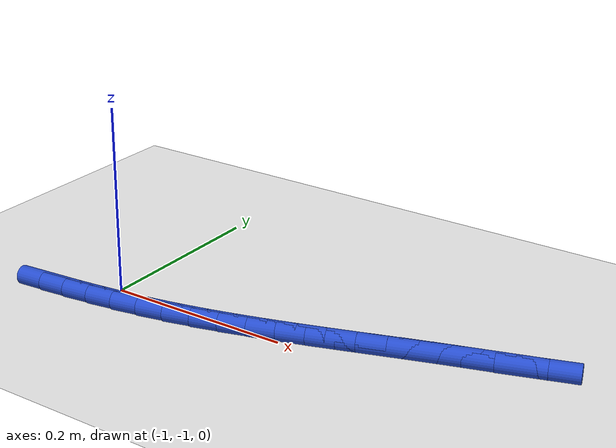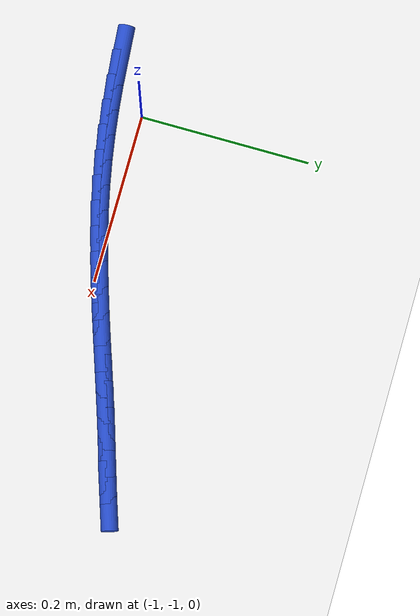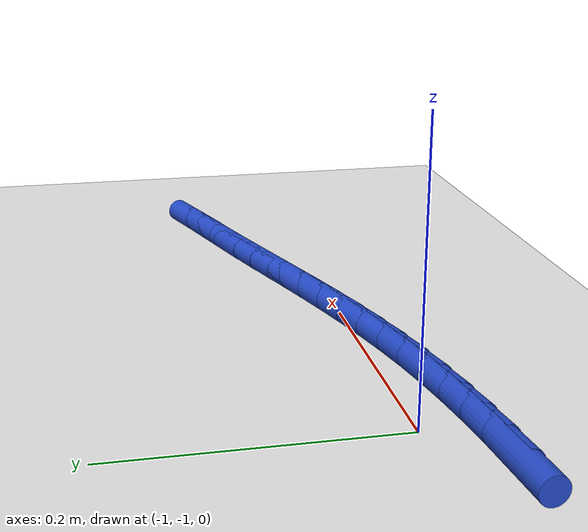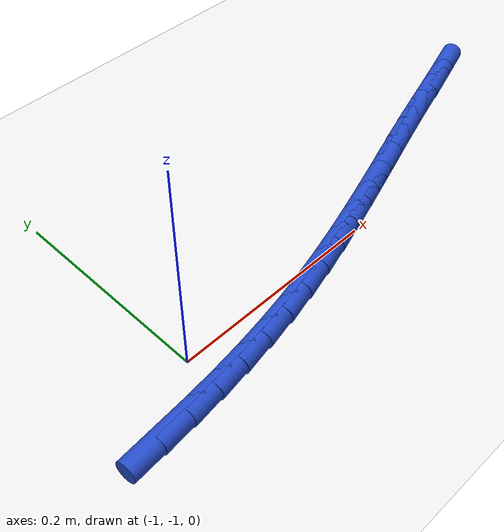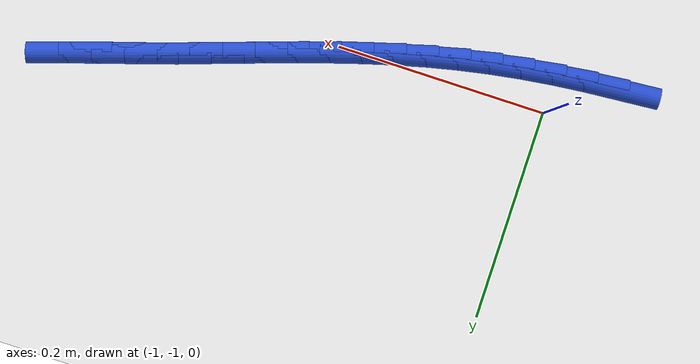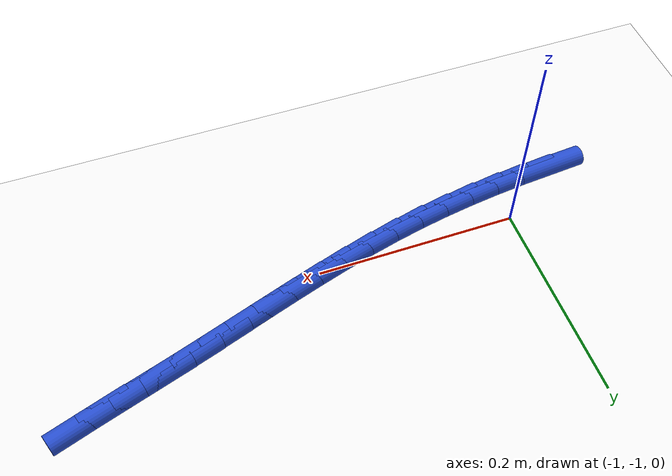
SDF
<sdf version="1.6">
 <world name="default">
  <model name="ground_plane">
   <static>1</static>
   <link name="link">
    <collision name="collision">
     <geometry><plane><normal>0 0 1</normal><size>100 100</size></plane></geometry>
     <surface><friction><ode><mu>100</mu><mu2>50</mu2></ode></friction></surface>
    </collision>
    <visual name="visual">
     <cast_shadows>0</cast_shadows>
     <geometry><plane><normal>0 0 1</normal><size>100 100</size></plane></geometry>
     <material>
      <script><uri>file://media/materials/scripts/gazebo.material</uri><name>Gazebo/WhiteGlow</name></script>
     </material>
    </visual>
   </link>
  </model>
  <model name="line">
   <link name="link_165">
    <pose>-1.0571898481107906 -1.0420203836513398 0.01 0 1.57 0.07797448877242436</pose>
    <collision name="collision">
     <geometry><cylinder><radius>0.01</radius><length>0.08</length></cylinder></geometry>
    </collision>
    <visual name="visual">
     <material>
      <script><name>Gazebo/Blue</name><uri>file://media/materials/scripts/gazebo.material</uri></script>
     </material>
     <geometry><cylinder><radius>0.01</radius><length>0.08</length></cylinder></geometry>
    </visual>
   </link>
   <link name="link_166">
    <pose>-1.0273258060107864 -1.0396870193500825 0.01 0 1.57 0.10377515008223141</pose>
    <collision name="collision">
     <geometry><cylinder><radius>0.01</radius><length>0.08</length></cylinder></geometry>
    </collision>
    <visual name="visual">
     <material>
      <script><name>Gazebo/Blue</name><uri>file://media/materials/scripts/gazebo.material</uri></script>
     </material>
     <geometry><cylinder><radius>0.01</radius><length>0.08</length></cylinder></geometry>
    </visual>
   </link>
   <link name="link_167">
    <pose>-0.9976157301074765 -1.0365927360449834 0.01 0 1.57 0.13090486954313105</pose>
    <collision name="collision">
     <geometry><cylinder><radius>0.01</radius><length>0.08</length></cylinder></geometry>
    </collision>
    <visual name="visual">
     <material>
      <script><name>Gazebo/Blue</name><uri>file://media/materials/scripts/gazebo.material</uri></script>
     </material>
     <geometry><cylinder><radius>0.01</radius><length>0.08</length></cylinder></geometry>
    </visual>
   </link>
   <link name="link_168">
    <pose>-0.9680737511845413 -1.0327033051871466 0.01 0 1.57 0.15936078898900094</pose>
    <collision name="collision">
     <geometry><cylinder><radius>0.01</radius><length>0.08</length></cylinder></geometry>
    </collision>
    <visual name="visual">
     <material>
      <script><name>Gazebo/Blue</name><uri>file://media/materials/scripts/gazebo.material</uri></script>
     </material>
     <geometry><cylinder><radius>0.01</radius><length>0.08</length></cylinder></geometry>
    </visual>
   </link>
   <link name="link_169">
    <pose>-0.9387140000256601 -1.0279844982276742 0.01 0 1.57 0.18913062433595426</pose>
    <collision name="collision">
     <geometry><cylinder><radius>0.01</radius><length>0.08</length></cylinder></geometry>
    </collision>
    <visual name="visual">
     <material>
      <script><name>Gazebo/Blue</name><uri>file://media/materials/scripts/gazebo.material</uri></script>
     </material>
     <geometry><cylinder><radius>0.01</radius><length>0.08</length></cylinder></geometry>
    </visual>
   </link>
   <link name="link_170">
    <pose>-0.909550607414514 -1.0224020866176706 0.01 0 1.57 0.22015118128249145</pose>
    <collision name="collision">
     <geometry><cylinder><radius>0.01</radius><length>0.08</length></cylinder></geometry>
    </collision>
    <visual name="visual">
     <material>
      <script><name>Gazebo/Blue</name><uri>file://media/materials/scripts/gazebo.material</uri></script>
     </material>
     <geometry><cylinder><radius>0.01</radius><length>0.08</length></cylinder></geometry>
    </visual>
   </link>
   <link name="link_171">
    <pose>-0.8805972802421927 -1.0159229641030312 0.01 0 1.57 0.25007009592494517</pose>
    <collision name="collision">
     <geometry><cylinder><radius>0.01</radius><length>0.08</length></cylinder></geometry>
    </collision>
    <visual name="visual">
     <material>
      <script><name>Gazebo/Blue</name><uri>file://media/materials/scripts/gazebo.material</uri></script>
     </material>
     <geometry><cylinder><radius>0.01</radius><length>0.08</length></cylinder></geometry>
    </visual>
   </link>
   <link name="link_172">
    <pose>-0.851843290483749 -1.0085787181273698 0.01 0 1.57 0.2752845817328563</pose>
    <collision name="collision">
     <geometry><cylinder><radius>0.01</radius><length>0.08</length></cylinder></geometry>
    </collision>
    <visual name="visual">
     <material>
      <script><name>Gazebo/Blue</name><uri>file://media/materials/scripts/gazebo.material</uri></script>
     </material>
     <geometry><cylinder><radius>0.01</radius><length>0.08</length></cylinder></geometry>
    </visual>
   </link>
   <link name="link_173">
    <pose>-0.8232405993174038 -1.0004997199160017 0.01 0 1.57 0.2954522880116876</pose>
    <collision name="collision">
     <geometry><cylinder><radius>0.01</radius><length>0.08</length></cylinder></geometry>
    </collision>
    <visual name="visual">
     <material>
      <script><name>Gazebo/Blue</name><uri>file://media/materials/scripts/gazebo.material</uri></script>
     </material>
     <geometry><cylinder><radius>0.01</radius><length>0.08</length></cylinder></geometry>
    </visual>
   </link>
   <link name="link_174">
    <pose>-0.794738023338906 -0.9918246662668656 0.01 0 1.57 0.31057131927928516</pose>
    <collision name="collision">
     <geometry><cylinder><radius>0.01</radius><length>0.08</length></cylinder></geometry>
    </collision>
    <visual name="visual">
     <material>
      <script><name>Gazebo/Blue</name><uri>file://media/materials/scripts/gazebo.material</uri></script>
     </material>
     <geometry><cylinder><radius>0.01</radius><length>0.08</length></cylinder></geometry>
    </visual>
   </link>
   <link name="link_175">
    <pose>-0.7662843791440018 -0.9826922539779004 0.01 0 1.57 0.32066771613595413</pose>
    <collision name="collision">
     <geometry><cylinder><radius>0.01</radius><length>0.08</length></cylinder></geometry>
    </collision>
    <visual name="visual">
     <material>
      <script><name>Gazebo/Blue</name><uri>file://media/materials/scripts/gazebo.material</uri></script>
     </material>
     <geometry><cylinder><radius>0.01</radius><length>0.08</length></cylinder></geometry>
    </visual>
   </link>
   <link name="link_176">
    <pose>-0.7378284833284394 -0.9732411798470452 0.01 0 1.57 0.32578364086505046</pose>
    <collision name="collision">
     <geometry><cylinder><radius>0.01</radius><length>0.08</length></cylinder></geometry>
    </collision>
    <visual name="visual">
     <material>
      <script><name>Gazebo/Blue</name><uri>file://media/materials/scripts/gazebo.material</uri></script>
     </material>
     <geometry><cylinder><radius>0.01</radius><length>0.08</length></cylinder></geometry>
    </visual>
   </link>
   <link name="link_177">
    <pose>-0.7093191524879656 -0.9636101406722382 0.01 0 1.57 0.32596951650674355</pose>
    <collision name="collision">
     <geometry><cylinder><radius>0.01</radius><length>0.08</length></cylinder></geometry>
    </collision>
    <visual name="visual">
     <material>
      <script><name>Gazebo/Blue</name><uri>file://media/materials/scripts/gazebo.material</uri></script>
     </material>
     <geometry><cylinder><radius>0.01</radius><length>0.08</length></cylinder></geometry>
    </visual>
   </link>
   <link name="link_178">
    <pose>-0.6807052032183275 -0.9539378332514187 0.01 0 1.57 0.32128004387503134</pose>
    <collision name="collision">
     <geometry><cylinder><radius>0.01</radius><length>0.08</length></cylinder></geometry>
    </collision>
    <visual name="visual">
     <material>
      <script><name>Gazebo/Blue</name><uri>file://media/materials/scripts/gazebo.material</uri></script>
     </material>
     <geometry><cylinder><radius>0.01</radius><length>0.08</length></cylinder></geometry>
    </visual>
   </link>
   <link name="link_179">
    <pose>-0.6519354521152735 -0.9443629543825255 0.01 0 1.57 0.3120151241230932</pose>
    <collision name="collision">
     <geometry><cylinder><radius>0.01</radius><length>0.08</length></cylinder></geometry>
    </collision>
    <visual name="visual">
     <material>
      <script><name>Gazebo/Blue</name><uri>file://media/materials/scripts/gazebo.material</uri></script>
     </material>
     <geometry><cylinder><radius>0.01</radius><length>0.08</length></cylinder></geometry>
    </visual>
   </link>
   <link name="link_180">
    <pose>-0.6229624987383918 -0.9350177039719348 0.01 0 1.57 0.30482047285068636</pose>
    <collision name="collision">
     <geometry><cylinder><radius>0.01</radius><length>0.08</length></cylinder></geometry>
    </collision>
    <visual name="visual">
     <material>
      <script><name>Gazebo/Blue</name><uri>file://media/materials/scripts/gazebo.material</uri></script>
     </material>
     <geometry><cylinder><radius>0.01</radius><length>0.08</length></cylinder></geometry>
    </visual>
   </link>
   <link name="link_181">
    <pose>-0.5938428120292017 -0.9258558958405678 0.01 0 1.57 0.3068958726403502</pose>
    <collision name="collision">
     <geometry><cylinder><radius>0.01</radius><length>0.08</length></cylinder></geometry>
    </collision>
    <visual name="visual">
     <material>
      <script><name>Gazebo/Blue</name><uri>file://media/materials/scripts/gazebo.material</uri></script>
     </material>
     <geometry><cylinder><radius>0.01</radius><length>0.08</length></cylinder></geometry>
    </visual>
   </link>
   <link name="link_182">
    <pose>-0.5647470627237771 -0.9166352127579817 0.01 0 1.57 0.31863791321027735</pose>
    <collision name="collision">
     <geometry><cylinder><radius>0.01</radius><length>0.08</length></cylinder></geometry>
    </collision>
    <visual name="visual">
     <material>
      <script><name>Gazebo/Blue</name><uri>file://media/materials/scripts/gazebo.material</uri></script>
     </material>
     <geometry><cylinder><radius>0.01</radius><length>0.08</length></cylinder></geometry>
    </visual>
   </link>
  </model>
 </world>
</sdf>
